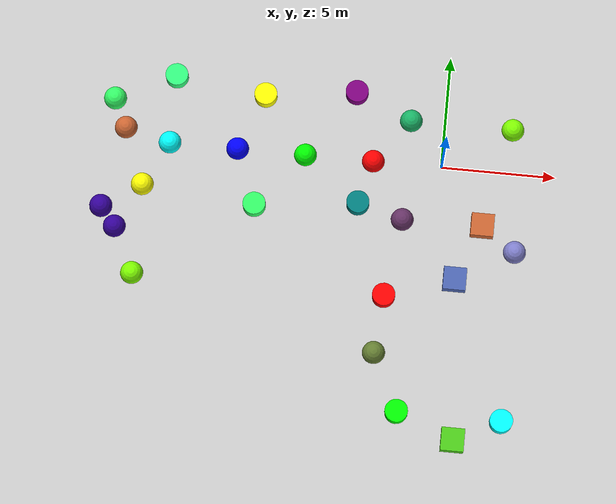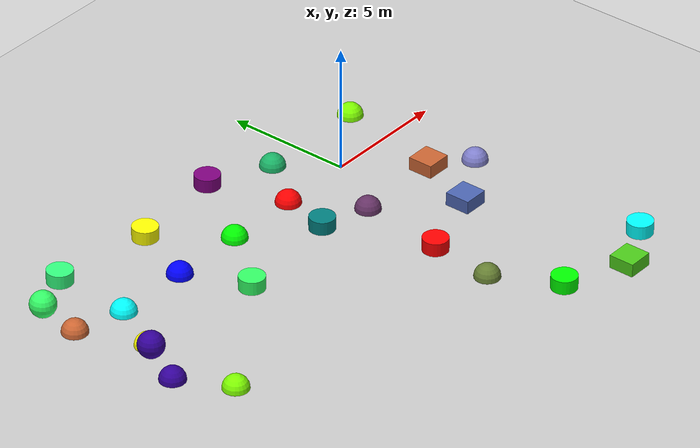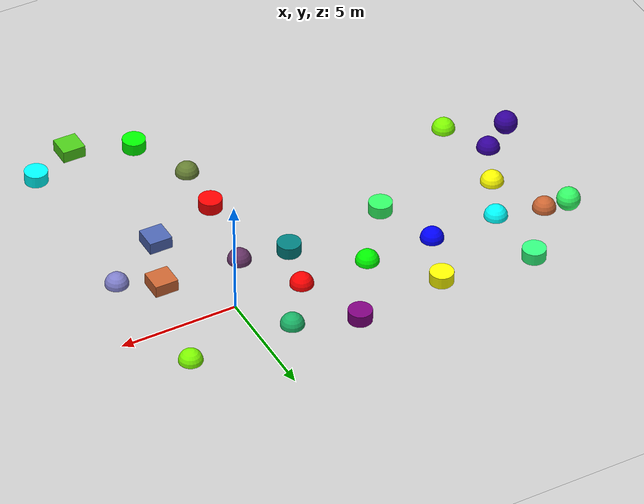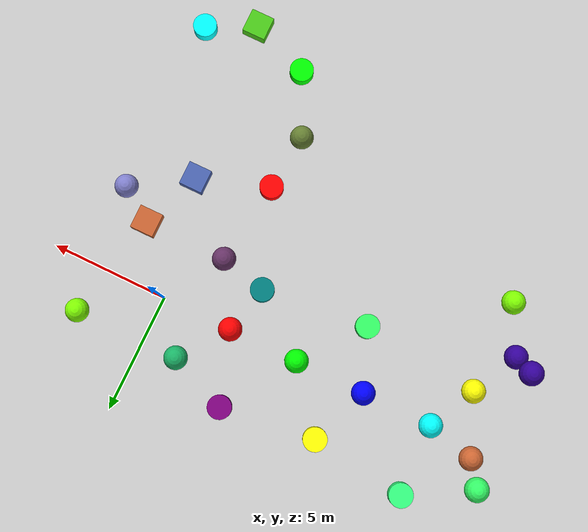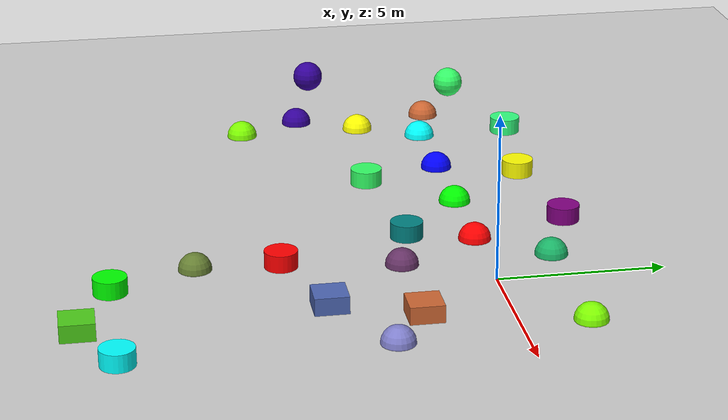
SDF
<sdf version="1.4">
 <world name="vrc_task_1">
  <scene><ambient>0.5 0.5 0.5 1.0</ambient><grid>true</grid><sky><clouds><speed>4</speed></clouds></sky></scene>
  <physics type="ode">
   <gravity>0 0 -9.81</gravity>
   <ode>
    <solver>
     <use_dynamic_moi_rescaling>true</use_dynamic_moi_rescaling>
     <type>quick</type>
     <iters>50</iters>
     <sor>1.0</sor>
    </solver>
    <constraints>
     <cfm>0.0</cfm>
     <erp>0.2</erp>
     <contact_max_correcting_vel>100.0</contact_max_correcting_vel>
     <contact_surface_layer>0.0</contact_surface_layer>
    </constraints>
   </ode>
   <real_time_update_rate>1000</real_time_update_rate>
   <max_step_size>0.001</max_step_size>
  </physics>
  <light type="directional" name="directional1">
   <pose>3.5 -4 6 0 0.7 0</pose>
   <diffuse>0.5 0.5 0.5 1</diffuse>
   <specular>0.09 0.09 0.09 1</specular>
   <attenuation>
    <range>20</range>
    <constant>0.5</constant>
    <linear>0.01</linear>
    <quadratic>0.00</quadratic>
   </attenuation>
  </light>
  <light type="point" name="point1">
   <pose>-12 9 8 0 0 0</pose>
   <diffuse>0.5 0.5 0.5 1</diffuse>
   <specular>0.09 0.09 0.09 1</specular>
   <attenuation>
    <range>20</range>
    <constant>0.5</constant>
    <linear>0.01</linear>
    <quadratic>0.00</quadratic>
   </attenuation>
  </light>
  <include><uri>model://ground_plane</uri></include>
  <model name="spheres">
   <link name="sphere1">
    <pose>-3 0 0 0 0 0</pose>
    <collision name="collision"><geometry><sphere><radius>0.5</radius></sphere></geometry></collision>
    <visual name="visual">
     <geometry><sphere><radius>0.5</radius></sphere></geometry>
     <material>
      <ambient>1 0 0 1</ambient>
      <diffuse>1 0 0 1</diffuse>
      <specular>0.1 0.1 0.1 1</specular>
      <emissive>0 0 0 0</emissive>
     </material>
    </visual>
   </link>
   <link name="sphere2">
    <pose>-6 0 0 0 0 0</pose>
    <collision name="collision"><geometry><sphere><radius>0.5</radius></sphere></geometry></collision>
    <visual name="visual">
     <geometry><sphere><radius>0.5</radius></sphere></geometry>
     <material>
      <ambient>0 1 0 1</ambient>
      <diffuse>0 1 0 1</diffuse>
      <specular>0.1 0.1 0.1 1</specular>
      <emissive>0 0 0 0</emissive>
     </material>
    </visual>
   </link>
   <link name="sphere3">
    <pose>-9 0 0 0 0 0</pose>
    <collision name="collision"><geometry><sphere><radius>0.5</radius></sphere></geometry></collision>
    <visual name="visual">
     <geometry><sphere><radius>0.5</radius></sphere></geometry>
     <material>
      <ambient>0 0 1 1</ambient>
      <diffuse>0 0 1 1</diffuse>
      <specular>0.1 0.1 0.1 1</specular>
      <emissive>0 0 0 0</emissive>
     </material>
    </visual>
   </link>
   <link name="sphere4">
    <pose>-12 0 0 0 0 0</pose>
    <collision name="collision"><geometry><sphere><radius>0.5</radius></sphere></geometry></collision>
    <visual name="visual">
     <geometry><sphere><radius>0.5</radius></sphere></geometry>
     <material>
      <ambient>0 1 1 1</ambient>
      <diffuse>0 1 1 1</diffuse>
      <specular>0.1 0.1 0.1 1</specular>
      <emissive>0 0 0 0</emissive>
     </material>
    </visual>
   </link>
   <link name="sphere5">
    <pose>-13 -2 0 0 0 0</pose>
    <collision name="collision"><geometry><sphere><radius>0.5</radius></sphere></geometry></collision>
    <visual name="visual">
     <geometry><sphere><radius>0.5</radius></sphere></geometry>
     <material>
      <ambient>1 1 0 1</ambient>
      <diffuse>1 1 0 1</diffuse>
      <specular>0.1 0.1 0.1 1</specular>
      <emissive>0 0 0 0</emissive>
     </material>
    </visual>
   </link>
   <link name="sphere6">
    <pose>-14 -4 0 0 0 0</pose>
    <collision name="collision"><geometry><sphere><radius>0.5</radius></sphere></geometry></collision>
    <visual name="visual">
     <geometry><sphere><radius>0.5</radius></sphere></geometry>
     <material>
      <ambient>0.2 0 0.6 1</ambient>
      <diffuse>0.2 0 0.6 1</diffuse>
      <specular>0.1 0.1 0.1 1</specular>
      <emissive>0 0 0 0</emissive>
     </material>
    </visual>
   </link>
   <link name="sphere7">
    <pose>-13 -6 0 0 0 0</pose>
    <collision name="collision"><geometry><sphere><radius>0.5</radius></sphere></geometry></collision>
    <visual name="visual">
     <geometry><sphere><radius>0.5</radius></sphere></geometry>
     <material>
      <ambient>0.5 1 0 1</ambient>
      <diffuse>0.5 1 0 1</diffuse>
      <specular>0.1 0.1 0.1 1</specular>
      <emissive>0 0 0 0</emissive>
     </material>
    </visual>
   </link>
   <link name="sphere8">
    <pose>3 2 0 0 0 0</pose>
    <collision name="collision"><geometry><sphere><radius>0.5</radius></sphere></geometry></collision>
    <visual name="visual">
     <geometry><sphere><radius>0.5</radius></sphere></geometry>
     <material>
      <ambient>0.5 1 0 1</ambient>
      <diffuse>0.5 1 0 1</diffuse>
      <specular>0.1 0.1 0.1 1</specular>
      <emissive>0 0 0 0</emissive>
     </material>
    </visual>
   </link>
   <link name="sphere9">
    <pose>3.5 -3.5 0 0 0 0</pose>
    <collision name="collision"><geometry><sphere><radius>0.5</radius></sphere></geometry></collision>
    <visual name="visual">
     <geometry><sphere><radius>0.5</radius></sphere></geometry>
     <material>
      <ambient>0.5 0.5 0.8 1</ambient>
      <diffuse>0.5 0.5 0.8 1</diffuse>
      <specular>0.1 0.1 0.1 1</specular>
      <emissive>0 0 0 0</emissive>
     </material>
    </visual>
   </link>
   <link name="sphere10">
    <gravity>0 0 9.81</gravity>
    <pose>-14.5 1.5 1 0 0 0</pose>
    <collision name="collision"><geometry><sphere><radius>0.5</radius></sphere></geometry></collision>
    <visual name="visual">
     <geometry><sphere><radius>0.5</radius></sphere></geometry>
     <material>
      <ambient>0.2 1 0.4 1</ambient>
      <diffuse>0.2 1 0.4 1</diffuse>
      <specular>0.1 0.1 0.1 1</specular>
      <emissive>0 0 0 0</emissive>
     </material>
    </visual>
   </link>
   <link name="sphere11">
    <pose>-2.2 -8.5 0 0 0 0</pose>
    <collision name="collision"><geometry><sphere><radius>0.5</radius></sphere></geometry></collision>
    <visual name="visual">
     <geometry><sphere><radius>0.5</radius></sphere></geometry>
     <material>
      <ambient>0.4 0.5 0.2 1</ambient>
      <diffuse>0.4 0.5 0.2 1</diffuse>
      <specular>0.1 0.1 0.1 1</specular>
      <emissive>0 0 0 0</emissive>
     </material>
    </visual>
   </link>
   <link name="sphere12">
    <gravity>0 0 9.81</gravity>
    <pose>-14.5 -3.5 1.5 0 0 0</pose>
    <collision name="collision"><geometry><sphere><radius>0.5</radius></sphere></geometry></collision>
    <visual name="visual">
     <geometry><sphere><radius>0.5</radius></sphere></geometry>
     <material>
      <ambient>0.2 0 0.6 1</ambient>
      <diffuse>0.2 0 0.6 1</diffuse>
      <specular>0.1 0.1 0.1 1</specular>
      <emissive>0 0 0 0</emissive>
     </material>
    </visual>
   </link>
   <link name="sphere13">
    <pose>-1.5 -2.5 0 0 0 0</pose>
    <collision name="collision"><geometry><sphere><radius>0.5</radius></sphere></geometry></collision>
    <visual name="visual">
     <geometry><sphere><radius>0.5</radius></sphere></geometry>
     <material>
      <ambient>0.6 0.2 0.4 1</ambient>
      <diffuse>0.4 0.2 0.4 1</diffuse>
      <specular>0.1 0.1 0.1 1</specular>
      <emissive>0 0 0 0</emissive>
     </material>
    </visual>
   </link>
   <link name="sphere14">
    <pose>-14 0.5 0 0 0 0</pose>
    <collision name="collision"><geometry><sphere><radius>0.5</radius></sphere></geometry></collision>
    <visual name="visual">
     <geometry><sphere><radius>0.5</radius></sphere></geometry>
     <material>
      <ambient>0.8 0.4 0.2 1</ambient>
      <diffuse>0.8 0.4 0.2 1</diffuse>
      <specular>0.1 0.1 0.1 1</specular>
      <emissive>0 0 0 0</emissive>
     </material>
    </visual>
   </link>
   <link name="sphere15">
    <pose>-1.5 2 0 0 0 0</pose>
    <collision name="collision"><geometry><sphere><radius>0.5</radius></sphere></geometry></collision>
    <visual name="visual">
     <geometry><sphere><radius>0.5</radius></sphere></geometry>
     <material>
      <ambient>0.1 0.7 0.4 1</ambient>
      <diffuse>0.1 0.7 0.4 1</diffuse>
      <specular>0.1 0.1 0.1 1</specular>
      <emissive>0 0 0 0</emissive>
     </material>
    </visual>
   </link>
  </model>
  <model name="cylinders">
   <link name="cyl1">
    <pose>-3.5 -2 0 0 0 0</pose>
    <collision name="collision"><geometry><cylinder><radius>0.5</radius></cylinder></geometry></collision>
    <visual name="visual">
     <geometry><cylinder><radius>0.5</radius></cylinder></geometry>
     <material>
      <ambient>0 0.5 0.5 1</ambient>
      <diffuse>0 0.5 0.5 1</diffuse>
      <specular>0.1 0.1 0.1 1</specular>
      <emissive>0 0 0 0</emissive>
     </material>
    </visual>
   </link>
   <link name="cyl2">
    <pose>-4 3 0 0 0 0</pose>
    <collision name="collision"><geometry><cylinder><radius>0.5</radius></cylinder></geometry></collision>
    <visual name="visual">
     <geometry><cylinder><radius>0.5</radius></cylinder></geometry>
     <material>
      <ambient>0.5 0 0.5 1</ambient>
      <diffuse>0.5 0 0.5 1</diffuse>
      <specular>0.1 0.1 0.1 1</specular>
      <emissive>0 0 0 0</emissive>
     </material>
    </visual>
   </link>
   <link name="cyl3">
    <pose>-12 3 0 0 0 0</pose>
    <collision name="collision"><geometry><cylinder><radius>0.5</radius></cylinder></geometry></collision>
    <visual name="visual">
     <geometry><cylinder><radius>0.5</radius></cylinder></geometry>
     <material>
      <ambient>0.2 1 0.5 1</ambient>
      <diffuse>0.2 1 0.5 1</diffuse>
      <specular>0.1 0.1 0.1 1</specular>
      <emissive>0 0 0 0</emissive>
     </material>
    </visual>
   </link>
   <link name="cyl4">
    <pose>-2 -6 0 0 0 0</pose>
    <collision name="collision"><geometry><cylinder><radius>0.5</radius></cylinder></geometry></collision>
    <visual name="visual">
     <geometry><cylinder><radius>0.5</radius></cylinder></geometry>
     <material>
      <ambient>1 0 0 1</ambient>
      <diffuse>1 0 0 1</diffuse>
      <specular>0.1 0.1 0.1 1</specular>
      <emissive>0 0 0 0</emissive>
     </material>
    </visual>
   </link>
   <link name="cyl5">
    <pose>-1 -11 0 0 0 0</pose>
    <collision name="collision"><geometry><cylinder><radius>0.5</radius></cylinder></geometry></collision>
    <visual name="visual">
     <geometry><cylinder><radius>0.5</radius></cylinder></geometry>
     <material>
      <ambient>0 1 0 1</ambient>
      <diffuse>0 1 0 1</diffuse>
      <specular>0.1 0.1 0.1 1</specular>
      <emissive>0 0 0 0</emissive>
     </material>
    </visual>
   </link>
   <link name="cyl6">
    <pose>3.5 -11 0 0 0 0</pose>
    <collision name="collision"><geometry><cylinder><radius>0.5</radius></cylinder></geometry></collision>
    <visual name="visual">
     <geometry><cylinder><radius>0.5</radius></cylinder></geometry>
     <material>
      <ambient>0 1 1 1</ambient>
      <diffuse>0 1 1 1</diffuse>
      <specular>0.1 0.1 0.1 1</specular>
      <emissive>0 0 0 0</emissive>
     </material>
    </visual>
   </link>
   <link name="cyl7">
    <pose>-8 2.5 0 0 0 0</pose>
    <collision name="collision"><geometry><cylinder><radius>0.5</radius></cylinder></geometry></collision>
    <visual name="visual">
     <geometry><cylinder><radius>0.5</radius></cylinder></geometry>
     <material>
      <ambient>1 1 0 1</ambient>
      <diffuse>1 1 0 1</diffuse>
      <specular>0.1 0.1 0.1 1</specular>
      <emissive>0 0 0 0</emissive>
     </material>
    </visual>
   </link>
   <link name="cyl8">
    <pose>-8 -2.5 0 0 0 0</pose>
    <collision name="collision"><geometry><cylinder><radius>0.5</radius></cylinder></geometry></collision>
    <visual name="visual">
     <geometry><cylinder><radius>0.5</radius></cylinder></geometry>
     <material>
      <ambient>0.2 1 0.4 1</ambient>
      <diffuse>0.2 1 0.4 1</diffuse>
      <specular>0.1 0.1 0.1 1</specular>
      <emissive>0 0 0 0</emissive>
     </material>
    </visual>
   </link>
  </model>
  <model name="cubes">
   <link name="cube1">
    <pose>1 -5 0 0 0 0</pose>
    <collision name="collision"><geometry><box><size>1 1 1</size></box></geometry></collision>
    <visual name="visual">
     <geometry><box><size>1 1 1</size></box></geometry>
     <material>
      <ambient>0.3 0.4 0.7 1</ambient>
      <diffuse>0.3 0.4 0.7 1</diffuse>
      <specular>0.1 0.1 0.1 1</specular>
      <emissive>0 0 0 0</emissive>
     </material>
    </visual>
   </link>
   <link name="cube2">
    <pose>2 -2.5 0 0 0 0</pose>
    <collision name="collision"><geometry><box><size>1 1 1</size></box></geometry></collision>
    <visual name="visual">
     <geometry><box><size>1 1 1</size></box></geometry>
     <material>
      <ambient>0.8 0.4 0.2 1</ambient>
      <diffuse>0.8 0.4 0.2 1</diffuse>
      <specular>0.1 0.1 0.1 1</specular>
      <emissive>0 0 0 0</emissive>
     </material>
    </visual>
   </link>
   <link name="cube3">
    <pose>1.5 -12 0 0 0 0</pose>
    <collision name="collision"><geometry><box><size>1 1 1</size></box></geometry></collision>
    <visual name="visual">
     <geometry><box><size>1 1 1</size></box></geometry>
     <material>
      <ambient>0.3 0.8 0.1 1</ambient>
      <diffuse>0.3 0.8 0.1 1</diffuse>
      <specular>0.1 0.1 0.1 1</specular>
      <emissive>0 0 0 0</emissive>
     </material>
    </visual>
   </link>
  </model>
  <plugin name="ardupilot_sitl_gazebo_plugin" filename="libardupilot_sitl_gazebo_plugin.so">
   <UAV_MODEL>erlecopter</UAV_MODEL>
  </plugin>
 </world>
</sdf>
